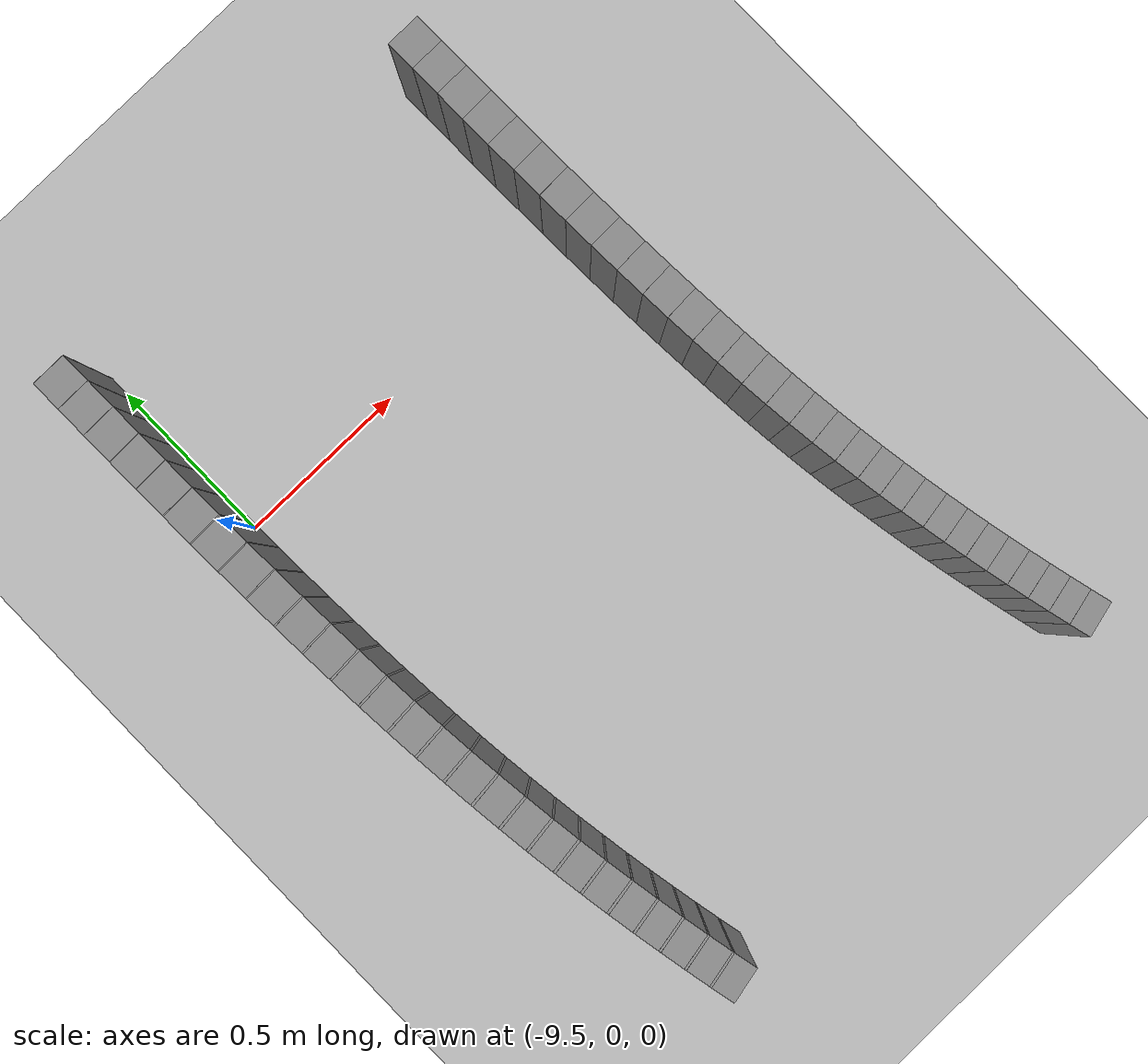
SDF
<sdf version="1.6">
 <world name="default">
  <include><uri>model://ground_plane</uri></include>
  <include><uri>model://sun</uri></include>
  <model name="wall_365_outward">
   <static>true</static>
   <link name="link">
    <collision name="collision">
     <geometry><box><size>0.08546261166842713 0.1 0.45</size></box></geometry>
    </collision>
    <visual name="visual">
     <geometry><box><size>0.08546261166842713 0.1 0.45</size></box></geometry>
     <material>
      <script><uri>file://media/materials/scripts/gazebo.material</uri><name>Gazebo/Gray</name></script>
     </material>
    </visual>
   </link>
   <pose>-8.348805281662859 0.5232368043609931 0.225 0 0 -1.5657635126705518</pose>
  </model>
  <model name="wall_366_outward">
   <static>true</static>
   <link name="link">
    <collision name="collision">
     <geometry><box><size>0.08694794771165838 0.1 0.45</size></box></geometry>
    </collision>
    <visual name="visual">
     <geometry><box><size>0.08694794771165838 0.1 0.45</size></box></geometry>
     <material>
      <script><uri>file://media/materials/scripts/gazebo.material</uri><name>Gazebo/Gray</name></script>
     </material>
    </visual>
   </link>
   <pose>-8.348298006154263 0.43703304795161535 0.225 0 0 -1.5640746063841413</pose>
  </model>
  <model name="wall_367_outward">
   <static>true</static>
   <link name="link">
    <collision name="collision">
     <geometry><box><size>0.08809687861439883 0.1 0.45</size></box></geometry>
    </collision>
    <visual name="visual">
     <geometry><box><size>0.08809687861439883 0.1 0.45</size></box></geometry>
     <material>
      <script><uri>file://media/materials/scripts/gazebo.material</uri><name>Gazebo/Gray</name></script>
     </material>
    </visual>
   </link>
   <pose>-8.347615951606326 0.34951334199308237 0.225 0 0 -1.5619460259357787</pose>
  </model>
  <model name="wall_368_outward">
   <static>true</static>
   <link name="link">
    <collision name="collision">
     <geometry><box><size>0.08886920661919853 0.1 0.45</size></box></geometry>
    </collision>
    <visual name="visual">
     <geometry><box><size>0.08886920661919853 0.1 0.45</size></box></geometry>
     <material>
      <script><uri>file://media/materials/scripts/gazebo.material</uri><name>Gazebo/Gray</name></script>
     </material>
    </visual>
   </link>
   <pose>-8.346715627793479 0.2610349569358718 0.225 0 0 -1.5593075735718287</pose>
  </model>
  <model name="wall_369_outward">
   <static>true</static>
   <link name="link">
    <collision name="collision">
     <geometry><box><size>0.08924173034484986 0.1 0.45</size></box></geometry>
    </collision>
    <visual name="visual">
     <geometry><box><size>0.08924173034484986 0.1 0.45</size></box></geometry>
     <material>
      <script><uri>file://media/materials/scripts/gazebo.material</uri><name>Gazebo/Gray</name></script>
     </material>
    </visual>
   </link>
   <pose>-8.345548293241938 0.17198725578510005 0.225 0 0 -1.5560751573975502</pose>
  </model>
  <model name="wall_370_outward">
   <static>true</static>
   <link name="link">
    <collision name="collision">
     <geometry><box><size>0.08921188025583864 0.1 0.45</size></box></geometry>
    </collision>
    <visual name="visual">
     <geometry><box><size>0.08921188025583864 0.1 0.45</size></box></geometry>
     <material>
      <script><uri>file://media/materials/scripts/gazebo.material</uri><name>Gazebo/Gray</name></script>
     </material>
    </visual>
   </link>
   <pose>-8.34406095252935 0.0827730172686551 0.225 0 0 -1.552176808649494</pose>
  </model>
  <model name="wall_371_outward">
   <static>true</static>
   <link name="link">
    <collision name="collision">
     <geometry><box><size>0.08878701629971956 0.1 0.45</size></box></geometry>
    </collision>
    <visual name="visual">
     <geometry><box><size>0.08878701629971956 0.1 0.45</size></box></geometry>
     <material>
      <script><uri>file://media/materials/scripts/gazebo.material</uri><name>Gazebo/Gray</name></script>
     </material>
    </visual>
   </link>
   <pose>-8.342198523708433 -0.006206703701626674 0.225 0 0 -1.5475490391580442</pose>
  </model>
  <model name="wall_372_outward">
   <static>true</static>
   <link name="link">
    <collision name="collision">
     <geometry><box><size>0.08799219081747274 0.1 0.45</size></box></geometry>
    </collision>
    <visual name="visual">
     <geometry><box><size>0.08799219081747274 0.1 0.45</size></box></geometry>
     <material>
      <script><uri>file://media/materials/scripts/gazebo.material</uri><name>Gazebo/Gray</name></script>
     </material>
    </visual>
   </link>
   <pose>-8.339905440894151 -0.09456623277511321 0.225 0 0 -1.5421274215542962</pose>
  </model>
  <model name="wall_373_outward">
   <static>true</static>
   <link name="link">
    <collision name="collision">
     <geometry><box><size>0.08686335153342357 0.1 0.45</size></box></geometry>
    </collision>
    <visual name="visual">
     <geometry><box><size>0.08686335153342357 0.1 0.45</size></box></geometry>
     <material>
      <script><uri>file://media/materials/scripts/gazebo.material</uri><name>Gazebo/Gray</name></script>
     </material>
    </visual>
   </link>
   <pose>-8.33712806391808 -0.18194945047287647 0.225 0 0 -1.5358785395369097</pose>
  </model>
  <model name="wall_374_outward">
   <static>true</static>
   <link name="link">
    <collision name="collision">
     <geometry><box><size>0.08544538832505875 0.1 0.45</size></box></geometry>
    </collision>
    <visual name="visual">
     <geometry><box><size>0.08544538832505875 0.1 0.45</size></box></geometry>
     <material>
      <script><uri>file://media/materials/scripts/gazebo.material</uri><name>Gazebo/Gray</name></script>
     </material>
    </visual>
   </link>
   <pose>-8.333817095527692 -0.26803963176606416 0.225 0 0 -1.5287749406159208</pose>
  </model>
  <model name="wall_375_outward">
   <static>true</static>
   <link name="link">
    <collision name="collision">
     <geometry><box><size>0.08379257256294835 0.1 0.45</size></box></geometry>
    </collision>
    <visual name="visual">
     <geometry><box><size>0.08379257256294835 0.1 0.45</size></box></geometry>
     <material>
      <script><uri>file://media/materials/scripts/gazebo.material</uri><name>Gazebo/Gray</name></script>
     </material>
    </visual>
   </link>
   <pose>-8.329929538365338 -0.3525685946908854 0.225 0 0 -1.5208231634569092</pose>
  </model>
  <model name="wall_376_outward">
   <static>true</static>
   <link name="link">
    <collision name="collision">
     <geometry><box><size>0.08196014900227702 0.1 0.45</size></box></geometry>
    </collision>
    <visual name="visual">
     <geometry><box><size>0.08196014900227702 0.1 0.45</size></box></geometry>
     <material>
      <script><uri>file://media/materials/scripts/gazebo.material</uri><name>Gazebo/Gray</name></script>
     </material>
    </visual>
   </link>
   <pose>-8.325430816852732 -0.43532196705901094 0.225 0 0 -1.512053458411489</pose>
  </model>
  <model name="wall_377_outward">
   <static>true</static>
   <link name="link">
    <collision name="collision">
     <geometry><box><size>0.08000465662085281 0.1 0.45</size></box></geometry>
    </collision>
    <visual name="visual">
     <geometry><box><size>0.08000465662085281 0.1 0.45</size></box></geometry>
     <material>
      <script><uri>file://media/materials/scripts/gazebo.material</uri><name>Gazebo/Gray</name></script>
     </material>
    </visual>
   </link>
   <pose>-8.320295903867091 -0.5161404878772448 0.225 0 0 -1.5025220154401262</pose>
  </model>
  <model name="wall_378_outward">
   <static>true</static>
   <link name="link">
    <collision name="collision">
     <geometry><box><size>0.07797661133428165 0.1 0.45</size></box></geometry>
    </collision>
    <visual name="visual">
     <geometry><box><size>0.07797661133428165 0.1 0.45</size></box></geometry>
     <material>
      <script><uri>file://media/materials/scripts/gazebo.material</uri><name>Gazebo/Gray</name></script>
     </material>
    </visual>
   </link>
   <pose>-8.314510115522094 -0.5949179108586207 0.225 0 0 -1.492313342677404</pose>
  </model>
  <model name="wall_379_outward">
   <static>true</static>
   <link name="link">
    <collision name="collision">
     <geometry><box><size>0.07591912638254869 0.1 0.45</size></box></geometry>
    </collision>
    <visual name="visual">
     <geometry><box><size>0.07591912638254869 0.1 0.45</size></box></geometry>
     <material>
      <script><uri>file://media/materials/scripts/gazebo.material</uri><name>Gazebo/Gray</name></script>
     </material>
    </visual>
   </link>
   <pose>-8.308069176776598 -0.6715946127558152 0.225 0 0 -1.4815260815177669</pose>
  </model>
  <model name="wall_380_outward">
   <static>true</static>
   <link name="link">
    <collision name="collision">
     <geometry><box><size>0.0738780726112012 0.1 0.45</size></box></geometry>
    </collision>
    <visual name="visual">
     <geometry><box><size>0.0738780726112012 0.1 0.45</size></box></geometry>
     <material>
      <script><uri>file://media/materials/scripts/gazebo.material</uri><name>Gazebo/Gray</name></script>
     </material>
    </visual>
   </link>
   <pose>-8.300977676728978 -0.7461555473564987 0.225 0 0 -1.47026333443578</pose>
  </model>
  <model name="wall_381_outward">
   <static>true</static>
   <link name="link">
    <collision name="collision">
     <geometry><box><size>0.07188882278497749 0.1 0.45</size></box></geometry>
    </collision>
    <visual name="visual">
     <geometry><box><size>0.07188882278497749 0.1 0.45</size></box></geometry>
     <material>
      <script><uri>file://media/materials/scripts/gazebo.material</uri><name>Gazebo/Gray</name></script>
     </material>
    </visual>
   </link>
   <pose>-8.293248328316032 -0.8186267523353845 0.225 0 0 -1.4586662538196566</pose>
  </model>
  <model name="wall_382_outward">
   <static>true</static>
   <link name="link">
    <collision name="collision">
     <geometry><box><size>0.06997689108424356 0.1 0.45</size></box></geometry>
    </collision>
    <visual name="visual">
     <geometry><box><size>0.06997689108424356 0.1 0.45</size></box></geometry>
     <material>
      <script><uri>file://media/materials/scripts/gazebo.material</uri><name>Gazebo/Gray</name></script>
     </material>
    </visual>
   </link>
   <pose>-8.284900630701532 -0.8890654523654558 0.225 0 0 -1.4468472700833825</pose>
  </model>
  <model name="wall_383_outward">
   <static>true</static>
   <link name="link">
    <collision name="collision">
     <geometry><box><size>0.06816828756807106 0.1 0.45</size></box></geometry>
    </collision>
    <visual name="visual">
     <geometry><box><size>0.06816828756807106 0.1 0.45</size></box></geometry>
     <material>
      <script><uri>file://media/materials/scripts/gazebo.material</uri><name>Gazebo/Gray</name></script>
     </material>
    </visual>
   </link>
   <pose>-8.275958652695259 -0.9575555579718298 0.225 0 0 -1.4349407748169076</pose>
  </model>
  <model name="wall_384_outward">
   <static>true</static>
   <link name="link">
    <collision name="collision">
     <geometry><box><size>0.06647791221683416 0.1 0.45</size></box></geometry>
    </collision>
    <visual name="visual">
     <geometry><box><size>0.06647791221683416 0.1 0.45</size></box></geometry>
     <material>
      <script><uri>file://media/materials/scripts/gazebo.material</uri><name>Gazebo/Gray</name></script>
     </material>
    </visual>
   </link>
   <pose>-8.26644943168991 -1.0242024966805452 0.225 0 0 -1.4230547036975993</pose>
  </model>
  <model name="wall_385_outward">
   <static>true</static>
   <link name="link">
    <collision name="collision">
     <geometry><box><size>0.06493011109894306 0.1 0.45</size></box></geometry>
    </collision>
    <visual name="visual">
     <geometry><box><size>0.06493011109894306 0.1 0.45</size></box></geometry>
     <material>
      <script><uri>file://media/materials/scripts/gazebo.material</uri><name>Gazebo/Gray</name></script>
     </material>
    </visual>
   </link>
   <pose>-8.256400245542794 -1.0891323188461448 0.225 0 0 -1.4112961453266626</pose>
  </model>
  <model name="wall_386_outward">
   <static>true</static>
   <link name="link">
    <collision name="collision">
     <geometry><box><size>0.06353216805342841 0.1 0.45</size></box></geometry>
    </collision>
    <visual name="visual">
     <geometry><box><size>0.06353216805342841 0.1 0.45</size></box></geometry>
     <material>
      <script><uri>file://media/materials/scripts/gazebo.material</uri><name>Gazebo/Gray</name></script>
     </material>
    </visual>
   </link>
   <pose>-8.24583797954717 -1.1524879903255625 0.225 0 0 -1.399782098042265</pose>
  </model>
  <model name="wall_387_outward">
   <static>true</static>
   <link name="link">
    <collision name="collision">
     <geometry><box><size>0.06230019460125374 0.1 0.45</size></box></geometry>
    </collision>
    <visual name="visual">
     <geometry><box><size>0.06230019460125374 0.1 0.45</size></box></geometry>
     <material>
      <script><uri>file://media/materials/scripts/gazebo.material</uri><name>Gazebo/Gray</name></script>
     </material>
    </visual>
   </link>
   <pose>-8.23478728875454 -1.2144250870402256 0.225 0 0 -1.388580622226468</pose>
  </model>
  <model name="wall_388_outward">
   <static>true</static>
   <link name="link">
    <collision name="collision">
     <geometry><box><size>0.0612426347339642 0.1 0.45</size></box></geometry>
    </collision>
    <visual name="visual">
     <geometry><box><size>0.0612426347339642 0.1 0.45</size></box></geometry>
     <material>
      <script><uri>file://media/materials/scripts/gazebo.material</uri><name>Gazebo/Gray</name></script>
     </material>
    </visual>
   </link>
   <pose>-8.223269621422611 -1.2751123203290562 0.225 0 0 -1.3778064643056895</pose>
  </model>
  <model name="wall_389_outward">
   <static>true</static>
   <link name="link">
    <collision name="collision">
     <geometry><box><size>0.0603594748605457 0.1 0.45</size></box></geometry>
    </collision>
    <visual name="visual">
     <geometry><box><size>0.0603594748605457 0.1 0.45</size></box></geometry>
     <material>
      <script><uri>file://media/materials/scripts/gazebo.material</uri><name>Gazebo/Gray</name></script>
     </material>
    </visual>
   </link>
   <pose>-8.21130372242332 -1.334723456725592 0.225 0 0 -1.367511633776756</pose>
  </model>
  <model name="wall_390_outward">
   <static>true</static>
   <link name="link">
    <collision name="collision">
     <geometry><box><size>0.059651743427580804 0.1 0.45</size></box></geometry>
    </collision>
    <visual name="visual">
     <geometry><box><size>0.059651743427580804 0.1 0.45</size></box></geometry>
     <material>
      <script><uri>file://media/materials/scripts/gazebo.material</uri><name>Gazebo/Gray</name></script>
     </material>
    </visual>
   </link>
   <pose>-8.198905299935145 -1.3934334811658142 0.225 0 0 -1.3577781589346813</pose>
  </model>
  <model name="wall_391_outward">
   <static>true</static>
   <link name="link">
    <collision name="collision">
     <geometry><box><size>0.05910958926888344 0.1 0.45</size></box></geometry>
    </collision>
    <visual name="visual">
     <geometry><box><size>0.05910958926888344 0.1 0.45</size></box></geometry>
     <material>
      <script><uri>file://media/materials/scripts/gazebo.material</uri><name>Gazebo/Gray</name></script>
     </material>
    </visual>
   </link>
   <pose>-8.186087838921658 -1.4514136725897706 0.225 0 0 -1.3486386472188394</pose>
  </model>
  <model name="wall_392_outward">
   <static>true</static>
   <link name="link">
    <collision name="collision">
     <geometry><box><size>0.058723092975841384 0.1 0.45</size></box></geometry>
    </collision>
    <visual name="visual">
     <geometry><box><size>0.058723092975841384 0.1 0.45</size></box></geometry>
     <material>
      <script><uri>file://media/materials/scripts/gazebo.material</uri><name>Gazebo/Gray</name></script>
     </material>
    </visual>
   </link>
   <pose>-8.172863431304688 -1.5088261072830786 0.225 0 0 -1.3401426689857907</pose>
  </model>
  <model name="wall_393_outward">
   <static>true</static>
   <link name="link">
    <collision name="collision">
     <geometry><box><size>0.05846196411107438 0.1 0.45</size></box></geometry>
    </collision>
    <visual name="visual">
     <geometry><box><size>0.05846196411107438 0.1 0.45</size></box></geometry>
     <material>
      <script><uri>file://media/materials/scripts/gazebo.material</uri><name>Gazebo/Gray</name></script>
     </material>
    </visual>
   </link>
   <pose>-8.159245077664037 -1.5658135787638874 0.225 0 0 -1.3322888715544094</pose>
  </model>
  <model name="wall_394_outward">
   <static>true</static>
   <link name="link">
    <collision name="collision">
     <geometry><box><size>0.058304456552550336 0.1 0.45</size></box></geometry>
    </collision>
    <visual name="visual">
     <geometry><box><size>0.058304456552550336 0.1 0.45</size></box></geometry>
     <material>
      <script><uri>file://media/materials/scripts/gazebo.material</uri><name>Gazebo/Gray</name></script>
     </material>
    </visual>
   </link>
   <pose>-8.145247016512618 -1.6224934594791471 0.225 0 0 -1.325049894229185</pose>
  </model>
  <model name="wall_421_inward">
   <static>true</static>
   <link name="link">
    <collision name="collision">
     <geometry><box><size>0.000790265783478136 0.1 0.45</size></box></geometry>
    </collision>
    <visual name="visual">
     <geometry><box><size>0.000790265783478136 0.1 0.45</size></box></geometry>
     <material>
      <script><uri>file://media/materials/scripts/gazebo.material</uri><name>Gazebo/Gray</name></script>
     </material>
    </visual>
   </link>
   <pose>-9.549008859006436 0.5607184746511469 0.225 0 0 -1.5664220675391036</pose>
  </model>
  <model name="wall_422_inward">
   <static>true</static>
   <link name="link">
    <collision name="collision">
     <geometry><box><size>0.08636441665086644 0.1 0.45</size></box></geometry>
    </collision>
    <visual name="visual">
     <geometry><box><size>0.08636441665086644 0.1 0.45</size></box></geometry>
     <material>
      <script><uri>file://media/materials/scripts/gazebo.material</uri><name>Gazebo/Gray</name></script>
     </material>
    </visual>
   </link>
   <pose>-9.548789803487715 0.5171416840988635 0.225 0 0 -1.5657635126705505</pose>
  </model>
  <model name="wall_423_inward">
   <static>true</static>
   <link name="link">
    <collision name="collision">
     <geometry><box><size>0.0010133436514130566 0.1 0.45</size></box></geometry>
    </collision>
    <visual name="visual">
     <geometry><box><size>0.0010133436514130566 0.1 0.45</size></box></geometry>
     <material>
      <script><uri>file://media/materials/scripts/gazebo.material</uri><name>Gazebo/Gray</name></script>
     </material>
    </visual>
   </link>
   <pose>-9.548569498548598 0.4734533595831263 0.225 0 0 -1.564919059526489</pose>
  </model>
  <model name="wall_424_inward">
   <static>true</static>
   <link name="link">
    <collision name="collision">
     <geometry><box><size>0.08809319409423766 0.1 0.45</size></box></geometry>
    </collision>
    <visual name="visual">
     <geometry><box><size>0.08809319409423766 0.1 0.45</size></box></geometry>
     <material>
      <script><uri>file://media/materials/scripts/gazebo.material</uri><name>Gazebo/Gray</name></script>
     </material>
    </visual>
   </link>
   <pose>-9.548270454039077 0.4289010945035459 0.225 0 0 -1.5640746063841353</pose>
  </model>
  <model name="wall_425_inward">
   <static>true</static>
   <link name="link">
    <collision name="collision">
     <geometry><box><size>0.001277148027912562 0.1 0.45</size></box></geometry>
    </collision>
    <visual name="visual">
     <geometry><box><size>0.001277148027912562 0.1 0.45</size></box></geometry>
     <material>
      <script><uri>file://media/materials/scripts/gazebo.material</uri><name>Gazebo/Gray</name></script>
     </material>
    </visual>
   </link>
   <pose>-9.547969415464323 0.38421693784065025 0.225 0 0 -1.5630103161601006</pose>
  </model>
  <model name="wall_426_inward">
   <static>true</static>
   <link name="link">
    <collision name="collision">
     <geometry><box><size>0.08952698915853939 0.1 0.45</size></box></geometry>
    </collision>
    <visual name="visual">
     <geometry><box><size>0.08952698915853939 0.1 0.45</size></box></geometry>
     <material>
      <script><uri>file://media/materials/scripts/gazebo.material</uri><name>Gazebo/Gray</name></script>
     </material>
    </visual>
   </link>
   <pose>-9.5475682783478 0.3388166417052796 0.225 0 0 -1.561946025935769</pose>
  </model>
  <model name="wall_427_inward">
   <static>true</static>
   <link name="link">
    <collision name="collision">
     <geometry><box><size>0.0015830709591683647 0.1 0.45</size></box></geometry>
    </collision>
    <visual name="visual">
     <geometry><box><size>0.0015830709591683647 0.1 0.45</size></box></geometry>
     <material>
      <script><uri>file://media/materials/scripts/gazebo.material</uri><name>Gazebo/Gray</name></script>
     </material>
    </visual>
   </link>
   <pose>-9.547164063722391 0.29326340567823617 0.225 0 0 -1.560626799754225</pose>
  </model>
  <model name="wall_428_inward">
   <static>true</static>
   <link name="link">
    <collision name="collision">
     <geometry><box><size>0.09063046848386831 0.1 0.45</size></box></geometry>
    </collision>
    <visual name="visual">
     <geometry><box><size>0.09063046848386831 0.1 0.45</size></box></geometry>
     <material>
      <script><uri>file://media/materials/scripts/gazebo.material</uri><name>Gazebo/Gray</name></script>
     </material>
    </visual>
   </link>
   <pose>-9.546635410228948 0.24715966746523682 0.225 0 0 -1.5593075735718465</pose>
  </model>
  <model name="wall_429_inward">
   <static>true</static>
   <link name="link">
    <collision name="collision">
     <geometry><box><size>0.001939448860231759 0.1 0.45</size></box></geometry>
    </collision>
    <visual name="visual">
     <geometry><box><size>0.001939448860231759 0.1 0.45</size></box></geometry>
     <material>
      <script><uri>file://media/materials/scripts/gazebo.material</uri><name>Gazebo/Gray</name></script>
     </material>
    </visual>
   </link>
   <pose>-9.546102098300832 0.20087778264109413 0.225 0 0 -1.5576913654845599</pose>
  </model>
  <model name="wall_430_inward">
   <static>true</static>
   <link name="link">
    <collision name="collision">
     <geometry><box><size>0.09138096214702186 0.1 0.45</size></box></geometry>
    </collision>
    <visual name="visual">
     <geometry><box><size>0.09138096214702186 0.1 0.45</size></box></geometry>
     <material>
      <script><uri>file://media/materials/scripts/gazebo.material</uri><name>Gazebo/Gray</name></script>
     </material>
    </visual>
   </link>
   <pose>-9.545416797445583 0.15422261117380162 0.225 0 0 -1.556075157397546</pose>
  </model>
  <model name="wall_431_inward">
   <static>true</static>
   <link name="link">
    <collision name="collision">
     <geometry><box><size>0.002339007767743244 0.1 0.45</size></box></geometry>
    </collision>
    <visual name="visual">
     <geometry><box><size>0.002339007767743244 0.1 0.45</size></box></geometry>
     <material>
      <script><uri>file://media/materials/scripts/gazebo.material</uri><name>Gazebo/Gray</name></script>
     </material>
    </visual>
   </link>
   <pose>-9.544724709298915 0.10736773948271575 0.225 0 0 -1.5541259830234144</pose>
  </model>
  <model name="wall_432_inward">
   <static>true</static>
   <link name="link">
    <collision name="collision">
     <geometry><box><size>0.09176971968653443 0.1 0.45</size></box></geometry>
    </collision>
    <visual name="visual">
     <geometry><box><size>0.09176971968653443 0.1 0.45</size></box></geometry>
     <material>
      <script><uri>file://media/materials/scripts/gazebo.material</uri><name>Gazebo/Gray</name></script>
     </material>
    </visual>
   </link>
   <pose>-9.543850909554294 0.06032149185452272 0.225 0 0 -1.5521768086494876</pose>
  </model>
  <model name="wall_433_inward">
   <static>true</static>
   <link name="link">
    <collision name="collision">
     <geometry><box><size>0.0027766592171275892 0.1 0.45</size></box></geometry>
    </collision>
    <visual name="visual">
     <geometry><box><size>0.0027766592171275892 0.1 0.45</size></box></geometry>
     <material>
      <script><uri>file://media/materials/scripts/gazebo.material</uri><name>Gazebo/Gray</name></script>
     </material>
    </visual>
   </link>
   <pose>-9.542967544597957 0.013056560179640738 0.225 0 0 -1.5498629239036819</pose>
  </model>
  <model name="wall_434_inward">
   <static>true</static>
   <link name="link">
    <collision name="collision">
     <geometry><box><size>0.09180183889019498 0.1 0.45</size></box></geometry>
    </collision>
    <visual name="visual">
     <geometry><box><size>0.09180183889019498 0.1 0.45</size></box></geometry>
     <material>
      <script><uri>file://media/materials/scripts/gazebo.material</uri><name>Gazebo/Gray</name></script>
     </material>
    </visual>
   </link>
   <pose>-9.541871508491777 -0.03421998199216393 0.225 0 0 -1.547549039158048</pose>
  </model>
  <model name="wall_435_inward">
   <static>true</static>
   <link name="link">
    <collision name="collision">
     <geometry><box><size>0.003252966578189562 0.1 0.45</size></box></geometry>
    </collision>
    <visual name="visual">
     <geometry><box><size>0.003252966578189562 0.1 0.45</size></box></geometry>
     <material>
      <script><uri>file://media/materials/scripts/gazebo.material</uri><name>Gazebo/Gray</name></script>
     </material>
    </visual>
   </link>
   <pose>-9.5407623170574 -0.08173443407154683 0.225 0 0 -1.544838230356241</pose>
  </model>
  <model name="wall_436_inward">
   <static>true</static>
   <link name="link">
    <collision name="collision">
     <geometry><box><size>0.0914933507881794 0.1 0.45</size></box></geometry>
    </collision>
    <visual name="visual">
     <geometry><box><size>0.0914933507881794 0.1 0.45</size></box></geometry>
     <material>
      <script><uri>file://media/materials/scripts/gazebo.material</uri><name>Gazebo/Gray</name></script>
     </material>
    </visual>
   </link>
   <pose>-9.539408773935303 -0.12908824635594815 0.225 0 0 -1.5421274215542893</pose>
  </model>
  <model name="wall_437_inward">
   <static>true</static>
   <link name="link">
    <collision name="collision">
     <geometry><box><size>0.0037493231101875407 0.1 0.45</size></box></geometry>
    </collision>
    <visual name="visual">
     <geometry><box><size>0.0037493231101875407 0.1 0.45</size></box></geometry>
     <material>
      <script><uri>file://media/materials/scripts/gazebo.material</uri><name>Gazebo/Gray</name></script>
     </material>
    </visual>
   </link>
   <pose>-9.538037854758578 -0.17668983746636568 0.225 0 0 -1.5390029805457113</pose>
  </model>
  <model name="wall_438_inward">
   <static>true</static>
   <link name="link">
    <collision name="collision">
     <geometry><box><size>0.09086911087647644 0.1 0.45</size></box></geometry>
    </collision>
    <visual name="visual">
     <geometry><box><size>0.09086911087647644 0.1 0.45</size></box></geometry>
     <material>
      <script><uri>file://media/materials/scripts/gazebo.material</uri><name>Gazebo/Gray</name></script>
     </material>
    </visual>
   </link>
   <pose>-9.536392111259879 -0.22397041180060467 0.225 0 0 -1.5358785395369134</pose>
  </model>
  <model name="wall_439_inward">
   <static>true</static>
   <link name="link">
    <collision name="collision">
     <geometry><box><size>0.004262150391212925 0.1 0.45</size></box></geometry>
    </collision>
    <visual name="visual">
     <geometry><box><size>0.004262150391212925 0.1 0.45</size></box></geometry>
     <material>
      <script><uri>file://media/materials/scripts/gazebo.material</uri><name>Gazebo/Gray</name></script>
     </material>
    </visual>
   </link>
   <pose>-9.534723998121876 -0.2715067704609807 0.225 0 0 -1.5323267400762663</pose>
  </model>
  <model name="wall_440_inward">
   <static>true</static>
   <link name="link">
    <collision name="collision">
     <geometry><box><size>0.08996202268067532 0.1 0.45</size></box></geometry>
    </collision>
    <visual name="visual">
     <geometry><box><size>0.08996202268067532 0.1 0.45</size></box></geometry>
     <material>
      <script><uri>file://media/materials/scripts/gazebo.material</uri><name>Gazebo/Gray</name></script>
     </material>
    </visual>
   </link>
   <pose>-9.532752428536277 -0.3185775724709984 0.225 0 0 -1.5287749406159206</pose>
  </model>
  <model name="wall_441_inward">
   <static>true</static>
   <link name="link">
    <collision name="collision">
     <geometry><box><size>0.004771053725496693 0.1 0.45</size></box></geometry>
    </collision>
    <visual name="visual">
     <geometry><box><size>0.004771053725496693 0.1 0.45</size></box></geometry>
     <material>
      <script><uri>file://media/materials/scripts/gazebo.material</uri><name>Gazebo/Gray</name></script>
     </material>
    </visual>
   </link>
   <pose>-9.530753131267417 -0.36590187970901633 0.225 0 0 -1.5247990520365584</pose>
  </model>
  <model name="wall_442_inward">
   <static>true</static>
   <link name="link">
    <collision name="collision">
     <geometry><box><size>0.08880904665579716 0.1 0.45</size></box></geometry>
    </collision>
    <visual name="visual">
     <geometry><box><size>0.08880904665579716 0.1 0.45</size></box></geometry>
     <material>
      <script><uri>file://media/materials/scripts/gazebo.material</uri><name>Gazebo/Gray</name></script>
     </material>
    </visual>
   </link>
   <pose>-9.528425331214423 -0.4126339722074147 0.225 0 0 -1.5208231634569043</pose>
  </model>
  <model name="wall_443_inward">
   <static>true</static>
   <link name="link">
    <collision name="collision">
     <geometry><box><size>0.005261806165808345 0.1 0.45</size></box></geometry>
    </collision>
    <visual name="visual">
     <geometry><box><size>0.005261806165808345 0.1 0.45</size></box></geometry>
     <material>
      <script><uri>file://media/materials/scripts/gazebo.material</uri><name>Gazebo/Gray</name></script>
     </material>
    </visual>
   </link>
   <pose>-9.526064279953271 -0.4596100781382477 0.225 0 0 -1.5164383109342436</pose>
  </model>
  <model name="wall_444_inward">
   <static>true</static>
   <link name="link">
    <collision name="collision">
     <geometry><box><size>0.08745053191690204 0.1 0.45</size></box></geometry>
    </collision>
    <visual name="visual">
     <geometry><box><size>0.08745053191690204 0.1 0.45</size></box></geometry>
     <material>
      <script><uri>file://media/materials/scripts/gazebo.material</uri><name>Gazebo/Gray</name></script>
     </material>
    </visual>
   </link>
   <pose>-9.523354269126148 -0.5058869410148925 0.225 0 0 -1.5120534584114975</pose>
  </model>
  <model name="wall_445_inward">
   <static>true</static>
   <link name="link">
    <collision name="collision">
     <geometry><box><size>0.0057188441349439395 0.1 0.45</size></box></geometry>
    </collision>
    <visual name="visual">
     <geometry><box><size>0.0057188441349439395 0.1 0.45</size></box></geometry>
     <material>
      <script><uri>file://media/materials/scripts/gazebo.material</uri><name>Gazebo/Gray</name></script>
     </material>
    </visual>
   </link>
   <pose>-9.520605722739482 -0.5523904442331148 0.225 0 0 -1.5072877369256825</pose>
  </model>
  <model name="wall_446_inward">
   <static>true</static>
   <link name="link">
    <collision name="collision">
     <geometry><box><size>0.08592673958746376 0.1 0.45</size></box></geometry>
    </collision>
    <visual name="visual">
     <geometry><box><size>0.08592673958746376 0.1 0.45</size></box></geometry>
     <material>
      <script><uri>file://media/materials/scripts/gazebo.material</uri><name>Gazebo/Gray</name></script>
     </material>
    </visual>
   </link>
   <pose>-9.517493230776136 -0.5981073760806008 0.225 0 0 -1.5025220154401155</pose>
  </model>
  <model name="wall_447_inward">
   <static>true</static>
   <link name="link">
    <collision name="collision">
     <geometry><box><size>0.00612517705972544 0.1 0.45</size></box></geometry>
    </collision>
    <visual name="visual">
     <geometry><box><size>0.00612517705972544 0.1 0.45</size></box></geometry>
     <material>
      <script><uri>file://media/materials/scripts/gazebo.material</uri><name>Gazebo/Gray</name></script>
     </material>
    </visual>
   </link>
   <pose>-9.51433768763964 -0.6440249975230391 0.225 0 0 -1.497417679058758</pose>
  </model>
  <model name="wall_448_inward">
   <static>true</static>
   <link name="link">
    <collision name="collision">
     <geometry><box><size>0.08427544949099261 0.1 0.45</size></box></geometry>
    </collision>
    <visual name="visual">
     <geometry><box><size>0.08427544949099261 0.1 0.45</size></box></geometry>
     <material>
      <script><uri>file://media/materials/scripts/gazebo.material</uri><name>Gazebo/Gray</name></script>
     </material>
    </visual>
   </link>
   <pose>-9.510809460276889 -0.6890873606386183 0.225 0 0 -1.4923133426774124</pose>
  </model>
  <model name="wall_449_inward">
   <static>true</static>
   <link name="link">
    <collision name="collision">
     <geometry><box><size>0.0064723253143363045 0.1 0.45</size></box></geometry>
    </collision>
    <visual name="visual">
     <geometry><box><size>0.0064723253143363045 0.1 0.45</size></box></geometry>
     <material>
      <script><uri>file://media/materials/scripts/gazebo.material</uri><name>Gazebo/Gray</name></script>
     </material>
    </visual>
   </link>
   <pose>-9.50723463969511 -0.7343201623297871 0.225 0 0 -1.4869197120974929</pose>
  </model>
  <model name="wall_450_inward">
   <static>true</static>
   <link name="link">
    <collision name="collision">
     <geometry><box><size>0.08253419595433245 0.1 0.45</size></box></geometry>
    </collision>
    <visual name="visual">
     <geometry><box><size>0.08253419595433245 0.1 0.45</size></box></geometry>
     <material>
      <script><uri>file://media/materials/scripts/gazebo.material</uri><name>Gazebo/Gray</name></script>
     </material>
    </visual>
   </link>
   <pose>-9.503284486555241 -0.7786477227433495 0.225 0 0 -1.4815260815177747</pose>
  </model>
  <model name="wall_451_inward">
   <static>true</static>
   <link name="link">
    <collision name="collision">
     <geometry><box><size>0.006757612532414414 0.1 0.45</size></box></geometry>
    </collision>
    <visual name="visual">
     <geometry><box><size>0.006757612532414414 0.1 0.45</size></box></geometry>
     <material>
      <script><uri>file://media/materials/scripts/gazebo.material</uri><name>Gazebo/Gray</name></script>
     </material>
    </visual>
   </link>
   <pose>-9.499285280539006 -0.8231140998747561 0.225 0 0 -1.4758947079769213</pose>
  </model>
  <model name="wall_452_inward">
   <static>true</static>
   <link name="link">
    <collision name="collision">
     <geometry><box><size>0.08073609563132444 0.1 0.45</size></box></geometry>
    </collision>
    <visual name="visual">
     <geometry><box><size>0.08073609563132444 0.1 0.45</size></box></geometry>
     <material>
      <script><uri>file://media/materials/scripts/gazebo.material</uri><name>Gazebo/Gray</name></script>
     </material>
    </visual>
   </link>
   <pose>-9.494913619522153 -0.8666419242700935 0.225 0 0 -1.4702633344357816</pose>
  </model>
  <model name="wall_453_inward">
   <static>true</static>
   <link name="link">
    <collision name="collision">
     <geometry><box><size>0.006958209376806727 0.1 0.45</size></box></geometry>
    </collision>
    <visual name="visual">
     <geometry><box><size>0.006958209376806727 0.1 0.45</size></box></geometry>
     <material>
      <script><uri>file://media/materials/scripts/gazebo.material</uri><name>Gazebo/Gray</name></script>
     </material>
    </visual>
   </link>
   <pose>-9.490492889771492 -0.9102656014307695 0.225 0 0 -1.464464794127723</pose>
  </model>
  <model name="wall_454_inward">
   <static>true</static>
   <link name="link">
    <collision name="collision">
     <geometry><box><size>0.0789137223590013 0.1 0.45</size></box></geometry>
    </collision>
    <visual name="visual">
     <geometry><box><size>0.0789137223590013 0.1 0.45</size></box></geometry>
     <material>
      <script><uri>file://media/materials/scripts/gazebo.material</uri><name>Gazebo/Gray</name></script>
     </material>
    </visual>
   </link>
   <pose>-9.485708612640593 -0.9529341289629651 0.225 0 0 -1.458666253819638</pose>
  </model>
  <model name="wall_455_inward">
   <static>true</static>
   <link name="link">
    <collision name="collision">
     <geometry><box><size>0.007091348967448707 0.1 0.45</size></box></geometry>
    </collision>
    <visual name="visual">
     <geometry><box><size>0.007091348967448707 0.1 0.45</size></box></geometry>
     <material>
      <script><uri>file://media/materials/scripts/gazebo.material</uri><name>Gazebo/Gray</name></script>
     </material>
    </visual>
   </link>
   <pose>-9.480876018695398 -0.995664202957748 0.225 0 0 -1.4527567619513604</pose>
  </model>
  <model name="wall_456_inward">
   <static>true</static>
   <link name="link">
    <collision name="collision">
     <geometry><box><size>0.07709461825879342 0.1 0.45</size></box></geometry>
    </collision>
    <visual name="visual">
     <geometry><box><size>0.07709461825879342 0.1 0.45</size></box></geometry>
     <material>
      <script><uri>file://media/materials/scripts/gazebo.material</uri><name>Gazebo/Gray</name></script>
     </material>
    </visual>
   </link>
   <pose>-9.475692782178553 -1.0374367843438599 0.225 0 0 -1.4468472700834003</pose>
  </model>
  <model name="wall_457_inward">
   <static>true</static>
   <link name="link">
    <collision name="collision">
     <geometry><box><size>0.007143854961975458 0.1 0.45</size></box></geometry>
    </collision>
    <visual name="visual">
     <geometry><box><size>0.007143854961975458 0.1 0.45</size></box></geometry>
     <material>
      <script><uri>file://media/materials/scripts/gazebo.material</uri><name>Gazebo/Gray</name></script>
     </material>
    </visual>
   </link>
   <pose>-9.470464406554898 -1.0792301965180893 0.225 0 0 -1.4408940224503117</pose>
  </model>
  <model name="wall_458_inward">
   <static>true</static>
   <link name="link">
    <collision name="collision">
     <geometry><box><size>0.07530614166413258 0.1 0.45</size></box></geometry>
    </collision>
    <visual name="visual">
     <geometry><box><size>0.07530614166413258 0.1 0.45</size></box></geometry>
     <material>
      <script><uri>file://media/materials/scripts/gazebo.material</uri><name>Gazebo/Gray</name></script>
     </material>
    </visual>
   </link>
   <pose>-9.464902051109505 -1.1200781575590042 0.225 0 0 -1.4349407748169032</pose>
  </model>
  <model name="wall_459_inward">
   <static>true</static>
   <link name="link">
    <collision name="collision">
     <geometry><box><size>0.0071316006904449895 0.1 0.45</size></box></geometry>
    </collision>
    <visual name="visual">
     <geometry><box><size>0.0071316006904449895 0.1 0.45</size></box></geometry>
     <material>
      <script><uri>file://media/materials/scripts/gazebo.material</uri><name>Gazebo/Gray</name></script>
     </material>
    </visual>
   </link>
   <pose>-9.45929846066776 -1.160914298086339 0.225 0 0 -1.428997739257275</pose>
  </model>
  <model name="wall_460_inward">
   <static>true</static>
   <link name="link">
    <collision name="collision">
     <geometry><box><size>0.07357138369080103 0.1 0.45</size></box></geometry>
    </collision>
    <visual name="visual">
     <geometry><box><size>0.07357138369080103 0.1 0.45</size></box></geometry>
     <material>
      <script><uri>file://media/materials/scripts/gazebo.material</uri><name>Gazebo/Gray</name></script>
     </material>
    </visual>
   </link>
   <pose>-9.453379499895306 -1.2008292600993618 0.225 0 0 -1.423054703697597</pose>
  </model>
  <model name="wall_461_inward">
   <static>true</static>
   <link name="link">
    <collision name="collision">
     <geometry><box><size>0.007055094378080648 0.1 0.45</size></box></geometry>
    </collision>
    <visual name="visual">
     <geometry><box><size>0.007055094378080648 0.1 0.45</size></box></geometry>
     <material>
      <script><uri>file://media/materials/scripts/gazebo.material</uri><name>Gazebo/Gray</name></script>
     </material>
    </visual>
   </link>
   <pose>-9.447424695797707 -1.2407002152450946 0.225 0 0 -1.4171754245121388</pose>
  </model>
  <model name="wall_462_inward">
   <static>true</static>
   <link name="link">
    <collision name="collision">
     <geometry><box><size>0.07191197160248979 0.1 0.45</size></box></geometry>
    </collision>
    <visual name="visual">
     <geometry><box><size>0.07191197160248979 0.1 0.45</size></box></geometry>
     <material>
      <script><uri>file://media/materials/scripts/gazebo.material</uri><name>Gazebo/Gray</name></script>
     </material>
    </visual>
   </link>
   <pose>-9.441174219202601 -1.2796858091936676 0.225 0 0 -1.4112961453266744</pose>
  </model>
  <model name="wall_463_inward">
   <static>true</static>
   <link name="link">
    <collision name="collision">
     <geometry><box><size>0.006908390209345956 0.1 0.45</size></box></geometry>
    </collision>
    <visual name="visual">
     <geometry><box><size>0.006908390209345956 0.1 0.45</size></box></geometry>
     <material>
      <script><uri>file://media/materials/scripts/gazebo.material</uri><name>Gazebo/Gray</name></script>
     </material>
    </visual>
   </link>
   <pose>-9.434895282716994 -1.3185925335390971 0.225 0 0 -1.4055391216843822</pose>
  </model>
  <model name="wall_464_inward">
   <static>true</static>
   <link name="link">
    <collision name="collision">
     <geometry><box><size>0.0703468982830019 0.1 0.45</size></box></geometry>
    </collision>
    <visual name="visual">
     <geometry><box><size>0.0703468982830019 0.1 0.45</size></box></geometry>
     <material>
      <script><uri>file://media/materials/scripts/gazebo.material</uri><name>Gazebo/Gray</name></script>
     </material>
    </visual>
   </link>
   <pose>-9.428341163408518 -1.3566600313992254 0.225 0 0 -1.3997820980422417</pose>
  </model>
  <model name="wall_465_inward">
   <static>true</static>
   <link name="link">
    <collision name="collision">
     <geometry><box><size>0.0067208503524305 0.1 0.45</size></box></geometry>
    </collision>
    <visual name="visual">
     <geometry><box><size>0.0067208503524305 0.1 0.45</size></box></geometry>
     <material>
      <script><uri>file://media/materials/scripts/gazebo.material</uri><name>Gazebo/Gray</name></script>
     </material>
    </visual>
   </link>
   <pose>-9.421764859359515 -1.3946285445033768 0.225 0 0 -1.3941813601344524</pose>
  </model>
  <model name="wall_466_inward">
   <static>true</static>
   <link name="link">
    <collision name="collision">
     <geometry><box><size>0.06889295112719984 0.1 0.45</size></box></geometry>
    </collision>
    <visual name="visual">
     <geometry><box><size>0.06889295112719984 0.1 0.45</size></box></geometry>
     <material>
      <script><uri>file://media/materials/scripts/gazebo.material</uri><name>Gazebo/Gray</name></script>
     </material>
    </visual>
   </link>
   <pose>-9.414932425931006 -1.4318128955932825 0.225 0 0 -1.388580622226472</pose>
  </model>
  <model name="wall_467_inward">
   <static>true</static>
   <link name="link">
    <collision name="collision">
     <geometry><box><size>0.006464463485235961 0.1 0.45</size></box></geometry>
    </collision>
    <visual name="visual">
     <geometry><box><size>0.006464463485235961 0.1 0.45</size></box></geometry>
     <material>
      <script><uri>file://media/materials/scripts/gazebo.material</uri><name>Gazebo/Gray</name></script>
     </material>
    </visual>
   </link>
   <pose>-9.408087588145086 -1.4688646155106273 0.225 0 0 -1.3831935432658786</pose>
  </model>
  <model name="wall_468_inward">
   <static>true</static>
   <link name="link">
    <collision name="collision">
     <geometry><box><size>0.06756338981409692 0.1 0.45</size></box></geometry>
    </collision>
    <visual name="visual">
     <geometry><box><size>0.06756338981409692 0.1 0.45</size></box></geometry>
     <material>
      <script><uri>file://media/materials/scripts/gazebo.material</uri><name>Gazebo/Gray</name></script>
     </material>
    </visual>
   </link>
   <pose>-9.401005633188454 -1.5051946789740671 0.225 0 0 -1.3778064643056984</pose>
  </model>
  <model name="wall_469_inward">
   <static>true</static>
   <link name="link">
    <collision name="collision">
     <geometry><box><size>0.006176871040337481 0.1 0.45</size></box></geometry>
    </collision>
    <visual name="visual">
     <geometry><box><size>0.006176871040337481 0.1 0.45</size></box></geometry>
     <material>
      <script><uri>file://media/materials/scripts/gazebo.material</uri><name>Gazebo/Gray</name></script>
     </material>
    </visual>
   </link>
   <pose>-9.393918565144661 -1.5413772330558984 0.225 0 0 -1.3726590490414021</pose>
  </model>
  <model name="wall_470_inward">
   <static>true</static>
   <link name="link">
    <collision name="collision">
     <geometry><box><size>0.06636801680321054 0.1 0.45</size></box></geometry>
    </collision>
    <visual name="visual">
     <geometry><box><size>0.06636801680321054 0.1 0.45</size></box></geometry>
     <material>
      <script><uri>file://media/materials/scripts/gazebo.material</uri><name>Gazebo/Gray</name></script>
     </material>
    </visual>
   </link>
   <pose>-9.386611191472989 -1.5769059504914023 0.225 0 0 -1.3675116337767566</pose>
  </model>
  <model name="wall_471_inward">
   <static>true</static>
   <link name="link">
    <collision name="collision">
     <geometry><box><size>0.005840061851409277 0.1 0.45</size></box></geometry>
    </collision>
    <visual name="visual">
     <geometry><box><size>0.005840061851409277 0.1 0.45</size></box></geometry>
     <material>
      <script><uri>file://media/materials/scripts/gazebo.material</uri><name>Gazebo/Gray</name></script>
     </material>
    </visual>
   </link>
   <pose>-9.379308326911993 -1.6122636587020085 0.225 0 0 -1.3626448963557645</pose>
  </model>
  <model name="wall_472_inward">
   <static>true</static>
   <link name="link">
    <collision name="collision">
     <geometry><box><size>0.06531368153490237 0.1 0.45</size></box></geometry>
    </collision>
    <visual name="visual">
     <geometry><box><size>0.06531368153490237 0.1 0.45</size></box></geometry>
     <material>
      <script><uri>file://media/materials/scripts/gazebo.material</uri><name>Gazebo/Gray</name></script>
     </material>
    </visual>
   </link>
   <pose>-9.371800888815619 -1.6470393673808346 0.225 0 0 -1.357778158934679</pose>
  </model>
 </world>
</sdf>
